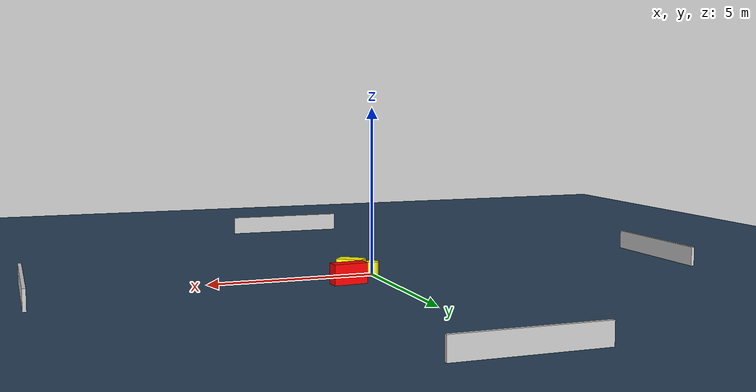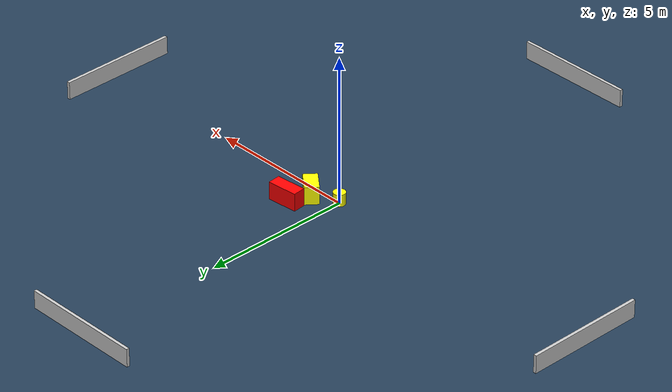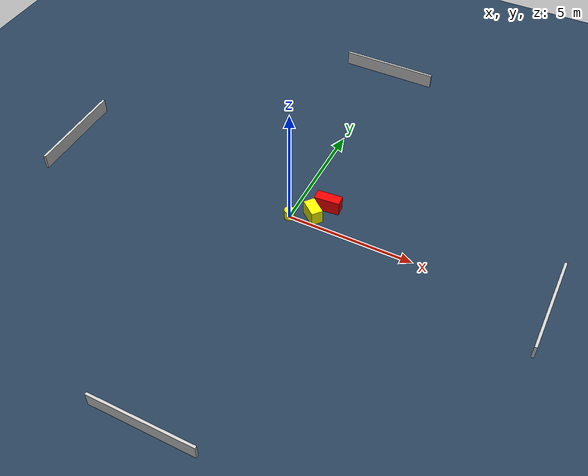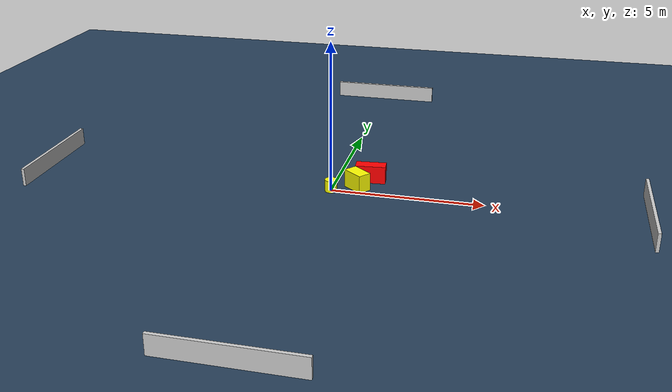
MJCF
<?xml version="1.0" ?>
<mujoco model="generated_environment">
  <option timestep="0.01" integrator="RK4" cone="elliptic"/>
  <default>
    <geom density="1"/>
  </default>
  <asset>
    <texture builtin="gradient" height="3072" name="skybox" rgb1="0.3 0.5 0.7" rgb2="0 0 0" type="skybox" width="512"/>
    <texture builtin="checker" height="300" name="groundplane" rgb1="0.2 0.3 0.4" rgb2="0.1 0.2 0.3" type="2d" width="300"/>
    <material name="groundplane" reflectance="0.2" texrepeat="5 5" texture="groundplane"/>
  </asset>
  <worldbody>
    <light dir="0 0 -1" directional="true" pos="0 0 1.5"/>
    <geom condim="3" friction="0.5 0.005 0.001" material="groundplane" name="floor" pos="0 0 0" size="0 0 0.05" type="plane"/>
    <body name="walls">
      <geom name="wall_1" condim="4" pos="-10.0 0.0 0.3" rgba="0.800000011920929 0.800000011920929 0.800000011920929 1.0" size="0.05 2.0 0.3" type="box"/>
      <geom name="wall_2" condim="4" pos="10.0 0.0 0.3" rgba="0.800000011920929 0.800000011920929 0.800000011920929 1.0" size="0.05 2.0 0.3" type="box"/>
      <geom name="wall_3" condim="4" pos="0.0 -10.0 0.3" rgba="0.800000011920929 0.800000011920929 0.800000011920929 1.0" size="2.0 0.05 0.3" type="box"/>
      <geom name="wall_4" condim="4" pos="0.0 10.0 0.3" rgba="0.800000011920929 0.800000011920929 0.800000011920929 1.0" size="2.0 0.05 0.3" type="box"/>
    </body>
    <body name="robot">
      <joint name="joint_x" type="slide" pos="0 0 0" axis="1 0 0"/>
      <joint name="joint_y" type="slide" pos="0 0 0" axis="0 1 0"/>
      <geom name="robot" type="cylinder" pos="0.0 0.0 0.2" size="0.2 0.2 0.0" mass="5.0" friction="1.0 0.005 0.0001" condim="4" rgba="1.0 1.0 0.0 1.0"/>
    </body>
    <body name="obstacle_1_movable">
      <geom name="obstacle_1_movable" condim="4" pos="0.8006570013941336 0.4010860056309383 0.3" euler="0 0 320.95860150553807" friction="0.0 0.005 0.001" rgba="1.0 1.0 0.0 1.0" size="0.38206879741797567 0.22933664919350438 0.3" type="box" mass="0.1"/>
      <joint type="free"/>
    </body>
    <body name="obstacle_2_static">
      <geom name="obstacle_2_static" condim="4" pos="1.1122643708286255 1.0971592360673423 0.3" euler="0 0 274.9450696317892" friction="0.0 0.005 0.001" rgba="1.0 0.0 0.0 1.0" size="0.20997690308677186 0.50632972218117 0.3" type="box"/>
    </body>
  </worldbody>
  <actuator>
    <motor name="actuator_x" joint="joint_x" gear="1" ctrlrange="-1 1"/>
    <motor name="actuator_y" joint="joint_y" gear="1" ctrlrange="-1 1"/>
  </actuator>
</mujoco>
